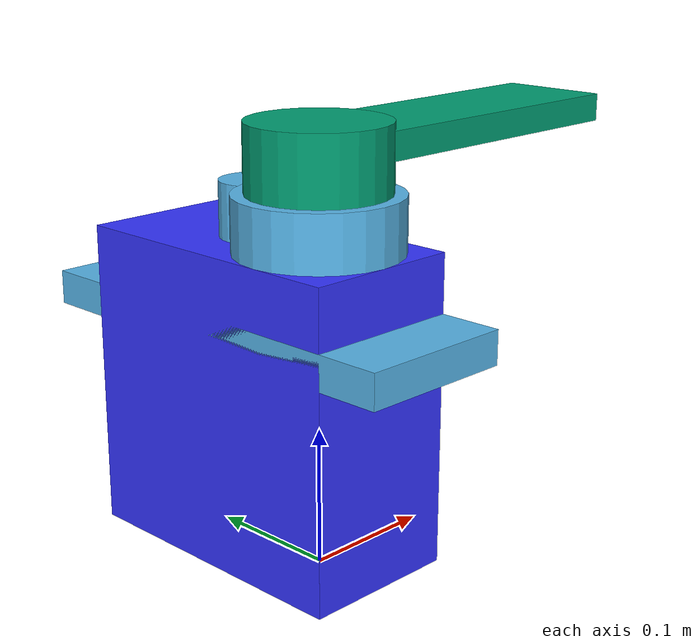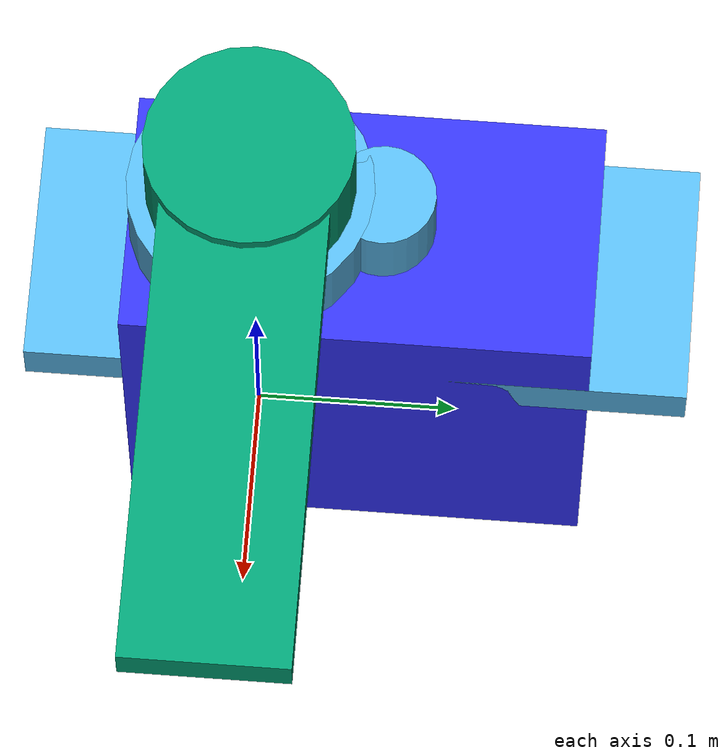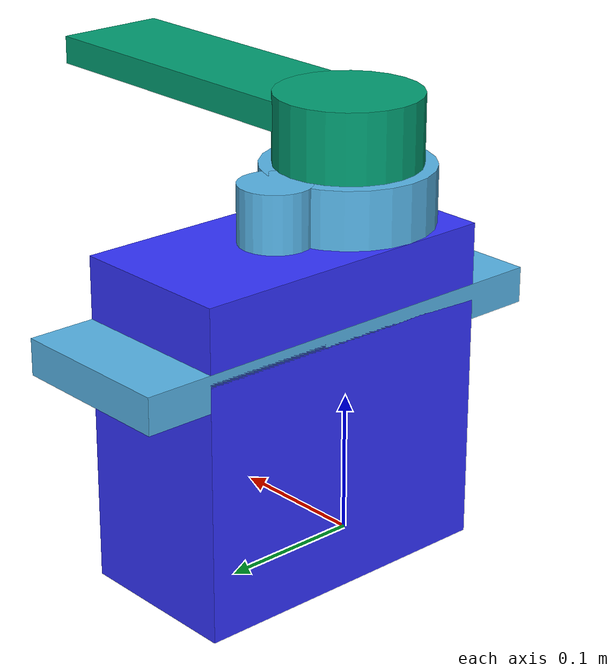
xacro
<?xml version="1.0"?>
<robot xmlns:xacro="http://www.ros.org/wiki/xacro" name="servo">

    <!-- Import panda urdf file -->
    <xacro:include filename="$(find servo_hardware)/urdf/servo.description.xacro" />

    <!-- Import servo ros2_control description -->
    <xacro:include filename="servo.ros2_control.xacro" />
    <xacro:servo_ros2_control
        name="servo"
        plugin="servo_hardware/ServoArduinoHardware"
        prefix=""
    />

</robot>

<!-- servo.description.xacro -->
<robot xmlns:xacro="http://www.ros.org/wiki/xacro" >

    <xacro:include filename="$(find servo_hardware)/urdf/inertial_macros.xacro" />
    <xacro:include filename="$(find servo_hardware)/urdf/servo.materials.xacro" />

    <link name="base_link" />
    <joint name="fixation" type="fixed">
        <parent link="base_link"/>
        <child link="motor"/>
        <origin xyz="0 0 0.267"/>
    </joint>

    <!-- Dimension here:

    https://yorobotics.co/producto/sg90s-servomotor-microservo-miniservo-sg90-domicilio-arduin

     -->

    <!-- MOTOR LINK -->

    <link name="motor">
        <visual>
            <origin xyz="0.0 0.0535 -0.1535"/>
            <geometry>
                <box size="0.118 0.225 0.227"/>
            </geometry>
            <material name="blue"/>
        </visual>
        <visual>
            <origin xyz="0.0 0.0 -0.025"/>
            <geometry>
                <cylinder radius="0.059" length="0.05"/>
            </geometry>
        </visual>
        <visual>
            <origin xyz="0.0 0.063 -0.025"/>
            <geometry>
                <cylinder radius="0.025" length="0.05"/>
            </geometry>
        </visual>
        <visual>
            <origin xyz="0.0 0.0535 -0.0955"/>
            <geometry>
                <box size="0.118 0.319 0.025"/>
            </geometry>
        </visual>
        <collision>
            <origin xyz="0.0 0.0535 -0.1335"/>
            <geometry>
                <box size="0.118 0.319 0.267"/>
            </geometry>
        </collision>
        <xacro:inertial_box mass="0.15" x="0.118" y="0.319" z="0.267">
            <origin xyz="0.0 0.0535 -0.1335" rpy="0 0 0"/>
        </xacro:inertial_box>
    </link>

    <!-- ARM LINK -->

    <joint name="servo_joint" type="revolute">
        <limit lower="-${pi/2}" upper="${pi/2}" effort="0.0" velocity="0.0"/>
        <parent link="motor"/>
        <child link="arm"/>
        <origin xyz="0 0 0.042" rpy="0 0 0" />
        <axis xyz="0 0 1"/>
    </joint>

    <link name="arm">
        <visual>
            <origin xyz="0.0 0.0 -0.027"/>
            <geometry>
                <cylinder radius="0.023" length="0.03"/>
            </geometry>
            <material name="white"/>
        </visual>
        <visual>
            <origin xyz="0.0 0.0 -0.021"/>
            <geometry>
                <cylinder radius="0.05" length="0.054"/>
            </geometry>
        </visual>
        <visual>
            <origin xyz="0.127 0.0 -0.01"/>
            <geometry>
                <box size="0.254 0.08 0.02"/>
            </geometry>
        </visual>
        <collision>
            <origin xyz="0.127 0.0 -0.01"/>
            <geometry>
                 <box size="0.304 0.08 0.02"/>
            </geometry>
        </collision>
        <xacro:inertial_cylinder mass="0.023" radius="0.05" length="0.03">
            <origin xyz="0 0 0" rpy="0 0 0"/>
        </xacro:inertial_cylinder>
    </link>

</robot>

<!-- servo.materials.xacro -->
<!--
Copied from ROS1 example:
https://github.com/ros-simulation/gazebo_ros_demos/blob/kinetic-devel/rrbot_description/urdf/materials.xacro
-->
<robot>

  <material name="white">
    <color rgba="1 1 1 1" />
  </material>

  <material name="orange">
    <color rgba="1 0.3 0.1 1"/>
  </material>

  <material name="blue">
    <color rgba="0.2 0.2 1 1"/>
  </material>

  <material name="black">
    <color rgba="0 0 0 1"/>
  </material>

</robot>
